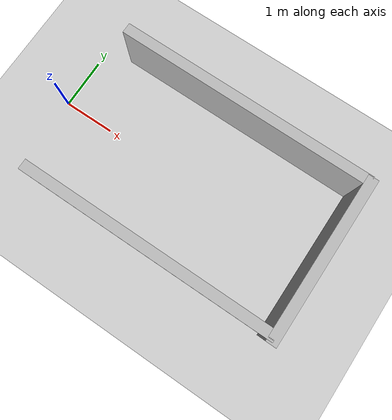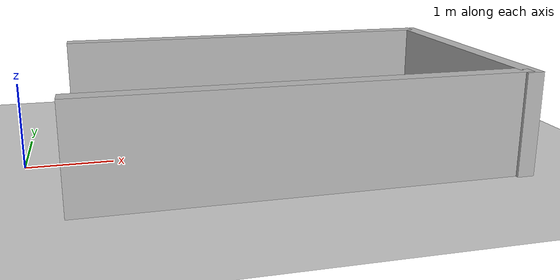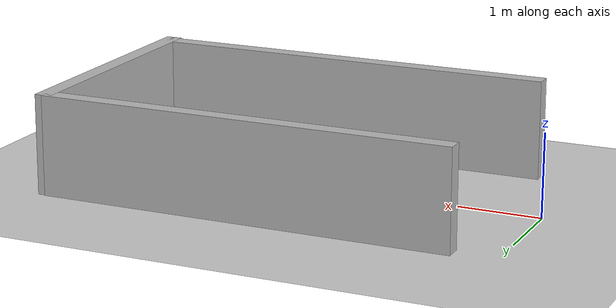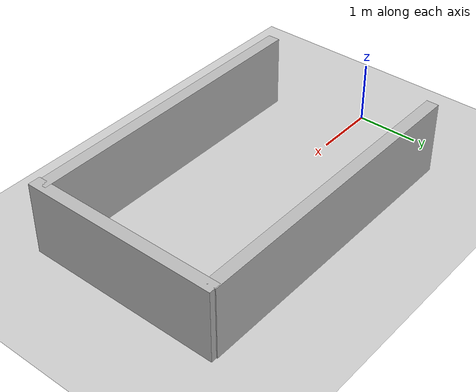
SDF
<?xml version="1.0"?>
<sdf version="1.6">
  <world name="v2-04g-r5-readiness-compile-support-maneuver-s5117">
    <gravity>0 0 -9.81</gravity>
    <physics name="v2_deterministic" type="ode">
      <max_step_size>0.002</max_step_size>
      <real_time_update_rate>500</real_time_update_rate>
    </physics>
    <include>
      <uri>model://sun</uri>
    </include>
    <include>
      <uri>model://ground_plane</uri>
    </include>
    <model name="bay-left">
      <static>true</static>
      <pose>3.000438069 1.501056962 0.600000000 0 0 -0.000038953</pose>
      <link name="link">
        <collision name="collision">
          <geometry>
            <box>
              <size>5.000000 0.200000 1.200000</size>
            </box>
          </geometry>
        </collision>
        <visual name="visual">
          <geometry>
            <box>
              <size>5.000000 0.200000 1.200000</size>
            </box>
          </geometry>
        </visual>
      </link>
    </model>
    <model name="bay-right">
      <static>true</static>
      <pose>3.000268668 -1.479751979 0.600000000 0 0 0.001768331</pose>
      <link name="link">
        <collision name="collision">
          <geometry>
            <box>
              <size>5.000000 0.200000 1.200000</size>
            </box>
          </geometry>
        </collision>
        <visual name="visual">
          <geometry>
            <box>
              <size>5.000000 0.200000 1.200000</size>
            </box>
          </geometry>
        </visual>
      </link>
    </model>
    <model name="bay-back">
      <static>true</static>
      <pose>5.491869851 -0.013170095 0.600000000 0 0 -0.000656411</pose>
      <link name="link">
        <collision name="collision">
          <geometry>
            <box>
              <size>0.200000 3.200000 1.200000</size>
            </box>
          </geometry>
        </collision>
        <visual name="visual">
          <geometry>
            <box>
              <size>0.200000 3.200000 1.200000</size>
            </box>
          </geometry>
        </visual>
      </link>
    </model>
  </world>
</sdf>
